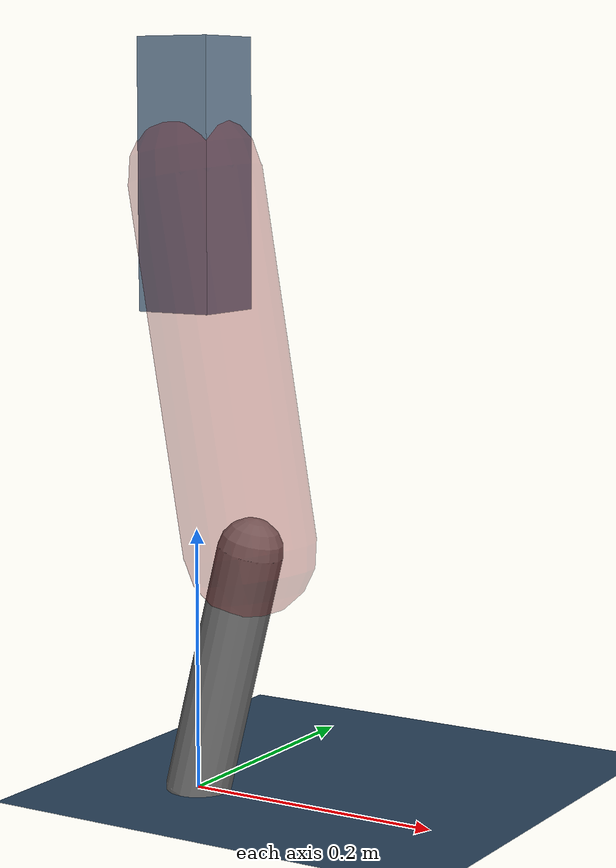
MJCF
<mujoco model="Hopper2D">
	<compiler inertiafromgeom="true" angle="radian" />
	<option timestep="0.001" integrator="implicit" cone="elliptic" solver="Newton" tolerance="1e-10" />

	<default>
		<geom contype="1" conaffinity="1" condim="3" friction="2 0.005 0.0001" solref="0.005 1" />
		<joint limited="true" damping="0.1" />
	</default>

	<asset>
		<texture name="skybox" type="skybox" builtin="gradient" rgb1=".4 .6 .8" rgb2="0 0 0" width="800" height="800" />
		<texture name="grid" type="2d" builtin="checker" rgb1=".1 .2 .3" rgb2=".2 .3 .4" width="300" height="300" mark="edge" markrgb=".2 .3 .4" />
		<material name="ground" texture="grid" texrepeat="1 1" texuniform="true" reflectance="0.1" />
		<material name="leg" rgba="0.5 0.6 0.7 1" />
	</asset>

	<worldbody>

		<geom name="floor" type="plane" size="5 5 0.25" material="ground" />

		<light directional="false" diffuse="0.8 0.8 0.8" specular="0.3 0.3 0.3" pos="0 0 2" dir="0 0 -1" />
		<light mode="targetbodycom" target="base" directional="false" diffuse="0.8 0.8 0.8" specular="0.3 0.3 0.3" pos="0 0 2" dir="0 0 -1" />

		<camera name="fixed" pos="0 -2 1" xyaxes="1 0 0 0 0 1" />
		<camera name="tracking" mode="trackcom" pos="0 -3 1" />

		<body name="root" pos="0 0 0.4657446455442559">
			<joint name="slide_x" type="slide" axis="1 0 0" range="-100 100" />
			<joint name="slide_z" type="slide" axis="0 0 1" range="0 10" />

			<body name="base" pos="0 0 0">
				<geom name="torso" type="box" size="0.03 0.03 0.1" mass="2.602" material="leg" />

				<body name="link1" pos="0 0 0" euler="0 1.4002865688726915 0">
					<joint type="hinge" axis="0 -1 0" pos="0 0 0" name="hinge1" limited="true" range="-3.14 3.14" stiffness="0" damping="0.1" />
					<geom name="thigh" type="capsule" fromto="0 0 0 0.28097374256609964 0 0" size="0.05" rgba="0.5 0 0 0.3" mass="0.937729104928469" />

					<body name="link2" pos="0.28097374256609964 0 0" euler="0 0.41780748656677175 0">
						<joint type="hinge" axis="0 -1 0" pos="0 0 0" name="hinge2" limited="true" range="-3.14 3.14" stiffness="0" damping="0.1" />
						<geom name="shank" type="capsule" fromto="0 0 0 0.19477090297815625 0 0" size="0.025" mass="0.3964938126803406" />

					</body>
				</body>
			</body>
		</body>
	</worldbody>

	<actuator>
		<motor name="torque1" joint="hinge1" ctrlrange="-95.99709465873623 95.99709465873623" ctrllimited="true" gear="1" />
		<motor name="torque2" joint="hinge2" ctrlrange="-103.45780995353475 103.45780995353475" ctrllimited="true" gear="1" />
	</actuator>
</mujoco>
